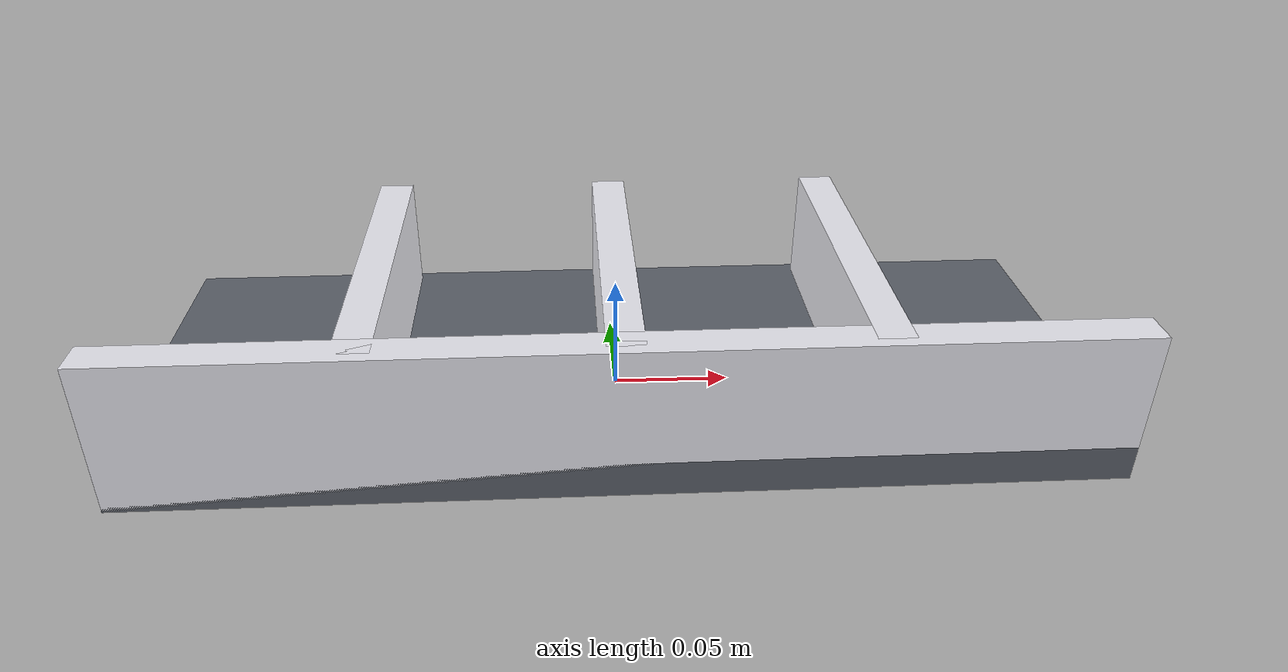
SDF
<?xml version="1.0"?>
<sdf version="1.6">
  <!-- 试剂架(静态环境道具):底座托盘 + 3 块分隔壁 + 后挡板,形成 4 个试剂瓶格。 -->
  <model name="reagent_rack">
    <static>true</static>
    <link name="link">
      <!-- 底座托盘 -->
      <collision name="collision_base">
        <pose>0 0 0.0075 0 0 0</pose>
        <geometry><box><size>0.40 0.16 0.015</size></box></geometry>
        <surface>
          <friction><ode><mu>1.0</mu><mu2>1.0</mu2></ode></friction>
        </surface>
      </collision>
      <visual name="visual_base">
        <pose>0 0 0.0075 0 0 0</pose>
        <geometry><box><size>0.40 0.16 0.015</size></box></geometry>
        <material>
          <ambient>0.22 0.22 0.25 1</ambient>
          <diffuse>0.36 0.38 0.42 1</diffuse>
          <specular>0.15 0.15 0.15 1</specular>
          <shininess>24</shininess>
        </material>
      </visual>
      <!-- 3 块分隔壁,形成 4 格 -->
      <collision name="collision_divider_1">
        <pose>-0.10 0 0.0325 0 0 0</pose>
        <geometry><box><size>0.015 0.15 0.065</size></box></geometry>
        <surface><friction><ode><mu>1.0</mu><mu2>1.0</mu2></ode></friction></surface>
      </collision>
      <visual name="visual_divider_1">
        <pose>-0.10 0 0.0325 0 0 0</pose>
        <geometry><box><size>0.015 0.15 0.065</size></box></geometry>
        <material>
          <ambient>0.85 0.85 0.88 1</ambient>
          <diffuse>0.92 0.92 0.95 1</diffuse>
        </material>
      </visual>
      <collision name="collision_divider_2">
        <pose>0 0 0.0325 0 0 0</pose>
        <geometry><box><size>0.015 0.15 0.065</size></box></geometry>
        <surface><friction><ode><mu>1.0</mu><mu2>1.0</mu2></ode></friction></surface>
      </collision>
      <visual name="visual_divider_2">
        <pose>0 0 0.0325 0 0 0</pose>
        <geometry><box><size>0.015 0.15 0.065</size></box></geometry>
        <material>
          <ambient>0.85 0.85 0.88 1</ambient>
          <diffuse>0.92 0.92 0.95 1</diffuse>
        </material>
      </visual>
      <collision name="collision_divider_3">
        <pose>0.10 0 0.0325 0 0 0</pose>
        <geometry><box><size>0.015 0.15 0.065</size></box></geometry>
        <surface><friction><ode><mu>1.0</mu><mu2>1.0</mu2></ode></friction></surface>
      </collision>
      <visual name="visual_divider_3">
        <pose>0.10 0 0.0325 0 0 0</pose>
        <geometry><box><size>0.015 0.15 0.065</size></box></geometry>
        <material>
          <ambient>0.85 0.85 0.88 1</ambient>
          <diffuse>0.92 0.92 0.95 1</diffuse>
        </material>
      </visual>
      <!-- 后挡板 -->
      <collision name="collision_back">
        <pose>0 -0.0725 0.0325 0 0 0</pose>
        <geometry><box><size>0.40 0.015 0.065</size></box></geometry>
        <surface><friction><ode><mu>1.0</mu><mu2>1.0</mu2></ode></friction></surface>
      </collision>
      <visual name="visual_back">
        <pose>0 -0.0725 0.0325 0 0 0</pose>
        <geometry><box><size>0.40 0.015 0.065</size></box></geometry>
        <material>
          <ambient>0.85 0.85 0.88 1</ambient>
          <diffuse>0.92 0.92 0.95 1</diffuse>
        </material>
      </visual>
    </link>
  </model>
</sdf>
